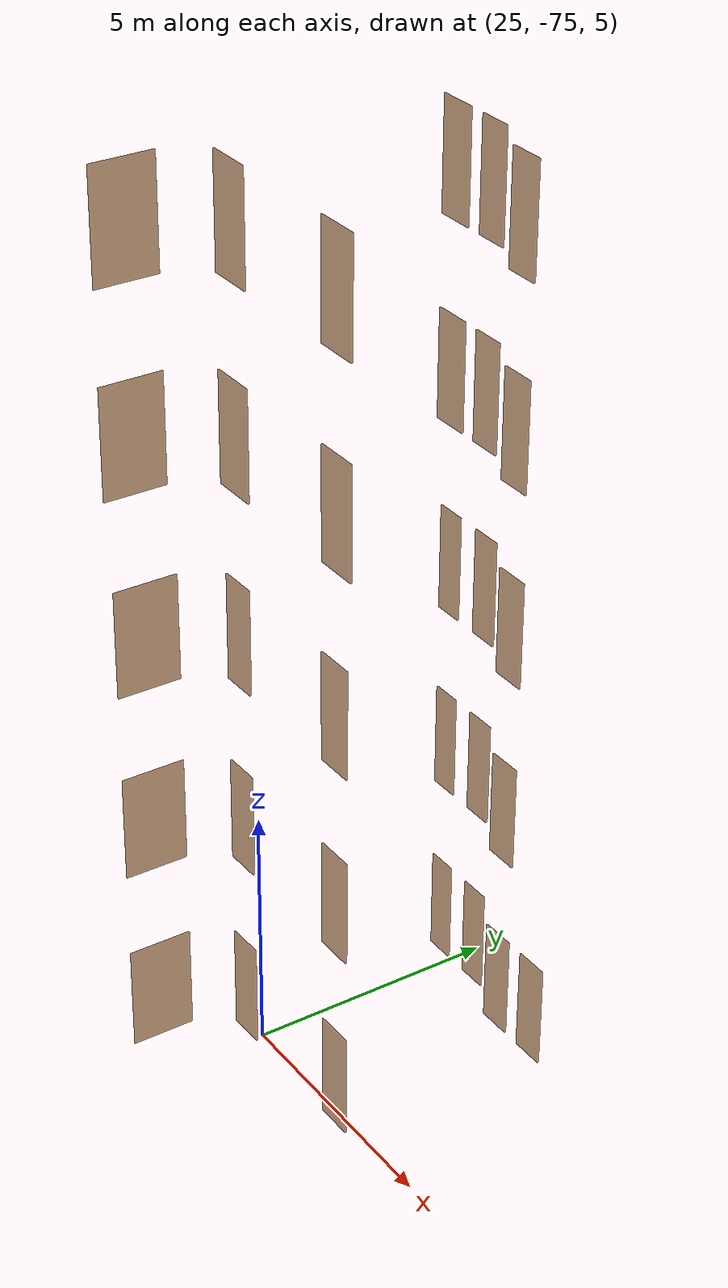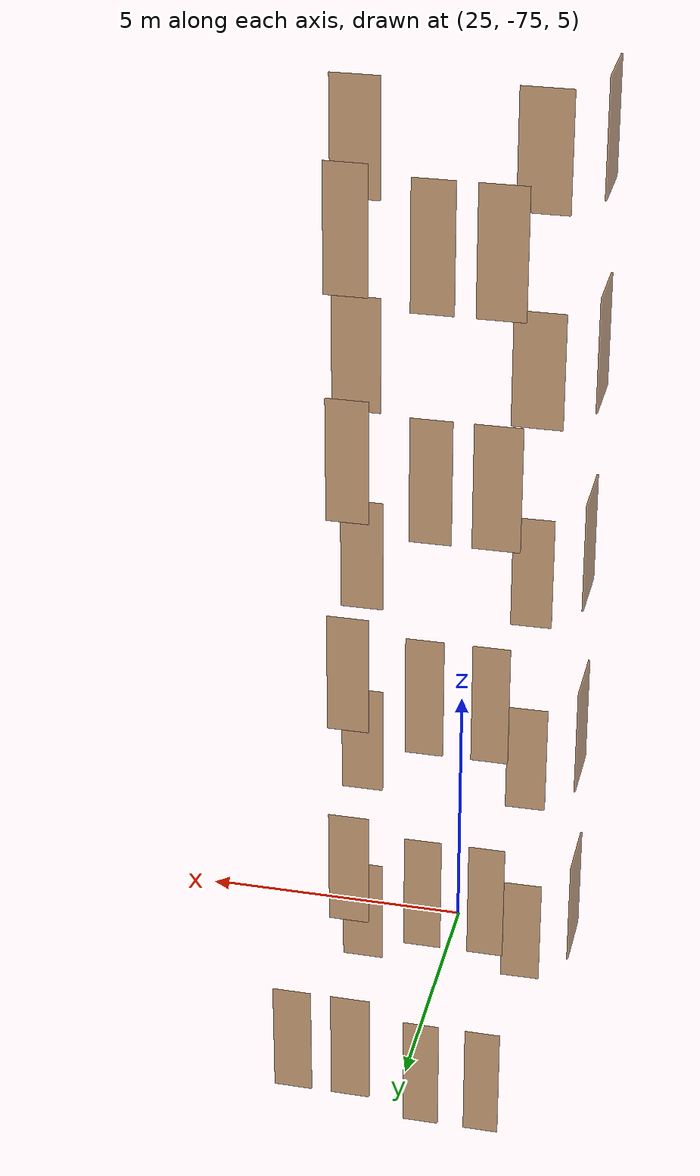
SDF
<sdf version="1.7">
 <world name="sim_world">
  <model name="0null51">
   <pose>23.572079304036127 -69.87992383228163 4.0 0 0 0.0</pose>
   <link name="right">
    <pose>0 0 1.11 0 0 0</pose>
    <visual name="right_visual">
     <geometry><box><size>0.6295848112608746 0.03 2.2</size></box></geometry>
     <material>
      <ambient>0.5 0.25 0 0.6</ambient>
      <diffuse>0.5 0.25 0 0.6</diffuse>
      <pbr><metal><metalness>0.0</metalness></metal></pbr>
     </material>
    </visual>
    <collision name="right_collision">
     <geometry><box><size>0.6295848112608746 0.03 2.2</size></box></geometry>
     <surface><contact><collide_bitmask>0x02</collide_bitmask></contact></surface>
    </collision>
    <inertial>
     <mass>50.0</mass>
     <inertia><ixx>20.17041666666667</ixx><iyy>21.8182376440433</iyy><izz>1.65532097737663</izz></inertia>
    </inertial>
   </link>
   <joint name="right_joint" type="revolute">
    <parent>world</parent>
    <child>right</child>
    <axis><xyz>0 0 -1</xyz><limit><lower>0</lower><upper>1.57</upper></limit></axis>
    <pose>0.3197924056304373 0 0 0 0 0</pose>
   </joint>
   <plugin name="register_component" filename="libregister_component.so">
    <component name="Door">
     <v_max_door>0.5</v_max_door>
     <a_max_door>0.3</a_max_door>
     <a_nom_door>0.15</a_nom_door>
     <dx_min_door>0.01</dx_min_door>
     <f_max_door>500.0</f_max_door>
     <ros_interface>true</ros_interface>
     <door name="0null51" type="SwingDoor" left_joint_name="empty_joint" right_joint_name="right_joint"/>
    </component>
   </plugin>
  </model>
  <model name="0null52">
   <pose>24.693816973453295 -69.87992383228163 4.0 0 0 3.141592653589793</pose>
   <link name="right">
    <pose>0 0 1.11 0 0 0</pose>
    <visual name="right_visual">
     <geometry><box><size>0.6492614718291401 0.03 2.2</size></box></geometry>
     <material>
      <ambient>0.5 0.25 0 0.6</ambient>
      <diffuse>0.5 0.25 0 0.6</diffuse>
      <pbr><metal><metalness>0.0</metalness></metal></pbr>
     </material>
    </visual>
    <collision name="right_collision">
     <geometry><box><size>0.6492614718291401 0.03 2.2</size></box></geometry>
     <surface><contact><collide_bitmask>0x02</collide_bitmask></contact></surface>
    </collision>
    <inertial>
     <mass>50.0</mass>
     <inertia><ixx>20.17041666666667</ixx><iyy>21.923085245007258</iyy><izz>1.7601685783405887</izz></inertia>
    </inertial>
   </link>
   <joint name="right_joint" type="revolute">
    <parent>world</parent>
    <child>right</child>
    <axis><xyz>0 0 1</xyz><limit><lower>0</lower><upper>1.57</upper></limit></axis>
    <pose>0.32963073591457004 0 0 0 0 0</pose>
   </joint>
   <plugin name="register_component" filename="libregister_component.so">
    <component name="Door">
     <v_max_door>0.5</v_max_door>
     <a_max_door>0.3</a_max_door>
     <a_nom_door>0.15</a_nom_door>
     <dx_min_door>0.01</dx_min_door>
     <f_max_door>500.0</f_max_door>
     <ros_interface>true</ros_interface>
     <door name="0null52" type="SwingDoor" left_joint_name="empty_joint" right_joint_name="right_joint"/>
    </component>
   </plugin>
  </model>
  <model name="0null53">
   <pose>26.114606280103033 -70.32860396520176 4.0 0 0 0.0</pose>
   <link name="right">
    <pose>0 0 1.11 0 0 0</pose>
    <visual name="right_visual">
     <geometry><box><size>0.7228155919799855 0.03 2.2</size></box></geometry>
     <material>
      <ambient>0.5 0.25 0 0.6</ambient>
      <diffuse>0.5 0.25 0 0.6</diffuse>
      <pbr><metal><metalness>0.0</metalness></metal></pbr>
     </material>
    </visual>
    <collision name="right_collision">
     <geometry><box><size>0.7228155919799855 0.03 2.2</size></box></geometry>
     <surface><contact><collide_bitmask>0x02</collide_bitmask></contact></surface>
    </collision>
    <inertial>
     <mass>50.0</mass>
     <inertia><ixx>20.17041666666667</ixx><iyy>22.343593250039074</iyy><izz>2.1806765833724038</izz></inertia>
    </inertial>
   </link>
   <joint name="right_joint" type="revolute">
    <parent>world</parent>
    <child>right</child>
    <axis><xyz>0 0 -1</xyz><limit><lower>0</lower><upper>1.57</upper></limit></axis>
    <pose>0.36640779598999274 0 0 0 0 0</pose>
   </joint>
   <plugin name="register_component" filename="libregister_component.so">
    <component name="Door">
     <v_max_door>0.5</v_max_door>
     <a_max_door>0.3</a_max_door>
     <a_nom_door>0.15</a_nom_door>
     <dx_min_door>0.01</dx_min_door>
     <f_max_door>500.0</f_max_door>
     <ros_interface>true</ros_interface>
     <door name="0null53" type="SwingDoor" left_joint_name="empty_joint" right_joint_name="right_joint"/>
    </component>
   </plugin>
  </model>
  <model name="0null54">
   <pose>27.208938505768565 -70.32860396520176 4.0 0 0 3.141592653589793</pose>
   <link name="right">
    <pose>0 0 1.11 0 0 0</pose>
    <visual name="right_visual">
     <geometry><box><size>0.708067430832992 0.03 2.2</size></box></geometry>
     <material>
      <ambient>0.5 0.25 0 0.6</ambient>
      <diffuse>0.5 0.25 0 0.6</diffuse>
      <pbr><metal><metalness>0.0</metalness></metal></pbr>
     </material>
    </visual>
    <collision name="right_collision">
     <geometry><box><size>0.708067430832992 0.03 2.2</size></box></geometry>
     <surface><contact><collide_bitmask>0x02</collide_bitmask></contact></surface>
    </collision>
    <inertial>
     <mass>50.0</mass>
     <inertia><ixx>20.17041666666667</ixx><iyy>22.255664527526815</iyy><izz>2.092747860860141</izz></inertia>
    </inertial>
   </link>
   <joint name="right_joint" type="revolute">
    <parent>world</parent>
    <child>right</child>
    <axis><xyz>0 0 1</xyz><limit><lower>0</lower><upper>1.57</upper></limit></axis>
    <pose>0.359033715416496 0 0 0 0 0</pose>
   </joint>
   <plugin name="register_component" filename="libregister_component.so">
    <component name="Door">
     <v_max_door>0.5</v_max_door>
     <a_max_door>0.3</a_max_door>
     <a_nom_door>0.15</a_nom_door>
     <dx_min_door>0.01</dx_min_door>
     <f_max_door>500.0</f_max_door>
     <ros_interface>true</ros_interface>
     <door name="0null54" type="SwingDoor" left_joint_name="empty_joint" right_joint_name="right_joint"/>
    </component>
   </plugin>
  </model>
  <model name="0null55">
   <pose>23.66503005637903 -74.55944068998987 4.0 0 0 -3.1305344986137533</pose>
   <link name="right">
    <pose>0 0 1.11 0 0 0</pose>
    <visual name="right_visual">
     <geometry><box><size>0.7564658594399267 0.03 2.2</size></box></geometry>
     <material>
      <ambient>0.5 0.25 0 0.6</ambient>
      <diffuse>0.5 0.25 0 0.6</diffuse>
      <pbr><metal><metalness>0.0</metalness></metal></pbr>
     </material>
    </visual>
    <collision name="right_collision">
     <geometry><box><size>0.7564658594399267 0.03 2.2</size></box></geometry>
     <surface><contact><collide_bitmask>0x02</collide_bitmask></contact></surface>
    </collision>
    <inertial>
     <mass>50.0</mass>
     <inertia><ixx>20.17041666666667</ixx><iyy>22.551002485409114</iyy><izz>2.3880858187424456</izz></inertia>
    </inertial>
   </link>
   <joint name="right_joint" type="revolute">
    <parent>world</parent>
    <child>right</child>
    <axis><xyz>0 0 1</xyz><limit><lower>0</lower><upper>1.57</upper></limit></axis>
    <pose>0.38323292971996337 0 0 0 0 0</pose>
   </joint>
   <plugin name="register_component" filename="libregister_component.so">
    <component name="Door">
     <v_max_door>0.5</v_max_door>
     <a_max_door>0.3</a_max_door>
     <a_nom_door>0.15</a_nom_door>
     <dx_min_door>0.01</dx_min_door>
     <f_max_door>500.0</f_max_door>
     <ros_interface>true</ros_interface>
     <door name="0null55" type="SwingDoor" left_joint_name="empty_joint" right_joint_name="right_joint"/>
    </component>
   </plugin>
  </model>
  <model name="0null56">
   <pose>26.843818840309133 -74.56367845274983 4.0 0 0 0.0</pose>
   <link name="right">
    <pose>0 0 1.11 0 0 0</pose>
    <visual name="right_visual">
     <geometry><box><size>0.7968550946495883 0.03 2.2</size></box></geometry>
     <material>
      <ambient>0.5 0.25 0 0.6</ambient>
      <diffuse>0.5 0.25 0 0.6</diffuse>
      <pbr><metal><metalness>0.0</metalness></metal></pbr>
     </material>
    </visual>
    <collision name="right_collision">
     <geometry><box><size>0.7968550946495883 0.03 2.2</size></box></geometry>
     <surface><contact><collide_bitmask>0x02</collide_bitmask></contact></surface>
    </collision>
    <inertial>
     <mass>50.0</mass>
     <inertia><ixx>20.17041666666667</ixx><iyy>22.812408507787524</iyy><izz>2.6494918411208515</izz></inertia>
    </inertial>
   </link>
   <joint name="right_joint" type="revolute">
    <parent>world</parent>
    <child>right</child>
    <axis><xyz>0 0 -1</xyz><limit><lower>0</lower><upper>1.57</upper></limit></axis>
    <pose>0.40342754732479413 0 0 0 0 0</pose>
   </joint>
   <plugin name="register_component" filename="libregister_component.so">
    <component name="Door">
     <v_max_door>0.5</v_max_door>
     <a_max_door>0.3</a_max_door>
     <a_nom_door>0.15</a_nom_door>
     <dx_min_door>0.01</dx_min_door>
     <f_max_door>500.0</f_max_door>
     <ros_interface>true</ros_interface>
     <door name="0null56" type="SwingDoor" left_joint_name="empty_joint" right_joint_name="right_joint"/>
    </component>
   </plugin>
  </model>
  <model name="0null57">
   <pose>22.824216853974523 -75.96718067430828 4.0 0 0 -1.5707963267948966</pose>
   <link name="right">
    <pose>0 0 1.11 0 0 0</pose>
    <visual name="right_visual">
     <geometry><box><size>1.2964257178060643 0.03 2.2</size></box></geometry>
     <material>
      <ambient>0.5 0.25 0 0.6</ambient>
      <diffuse>0.5 0.25 0 0.6</diffuse>
      <pbr><metal><metalness>0.0</metalness></metal></pbr>
     </material>
    </visual>
    <collision name="right_collision">
     <geometry><box><size>1.2964257178060643 0.03 2.2</size></box></geometry>
     <surface><contact><collide_bitmask>0x02</collide_bitmask></contact></surface>
    </collision>
    <inertial>
     <mass>50.0</mass>
     <inertia><ixx>20.17041666666667</ixx><iyy>27.16966517412071</iyy><izz>7.006748507454038</izz></inertia>
    </inertial>
   </link>
   <joint name="right_joint" type="revolute">
    <parent>world</parent>
    <child>right</child>
    <axis><xyz>0 0 -1</xyz><limit><lower>0</lower><upper>1.57</upper></limit></axis>
    <pose>0.6532128589030322 0 0 0 0 0</pose>
   </joint>
   <plugin name="register_component" filename="libregister_component.so">
    <component name="Door">
     <v_max_door>0.5</v_max_door>
     <a_max_door>0.3</a_max_door>
     <a_nom_door>0.15</a_nom_door>
     <dx_min_door>0.01</dx_min_door>
     <f_max_door>500.0</f_max_door>
     <ros_interface>true</ros_interface>
     <door name="0null57" type="SwingDoor" left_joint_name="empty_joint" right_joint_name="right_joint"/>
    </component>
   </plugin>
  </model>
  <model name="1null51">
   <pose>23.572079304036127 -69.87992383228163 8.0 0 0 0.0</pose>
   <link name="right">
    <pose>0 0 1.11 0 0 0</pose>
    <visual name="right_visual">
     <geometry><box><size>0.6295848112608746 0.03 2.2</size></box></geometry>
     <material>
      <ambient>0.5 0.25 0 0.6</ambient>
      <diffuse>0.5 0.25 0 0.6</diffuse>
      <pbr><metal><metalness>0.0</metalness></metal></pbr>
     </material>
    </visual>
    <collision name="right_collision">
     <geometry><box><size>0.6295848112608746 0.03 2.2</size></box></geometry>
     <surface><contact><collide_bitmask>0x02</collide_bitmask></contact></surface>
    </collision>
    <inertial>
     <mass>50.0</mass>
     <inertia><ixx>20.17041666666667</ixx><iyy>21.8182376440433</iyy><izz>1.65532097737663</izz></inertia>
    </inertial>
   </link>
   <joint name="right_joint" type="revolute">
    <parent>world</parent>
    <child>right</child>
    <axis><xyz>0 0 -1</xyz><limit><lower>0</lower><upper>1.57</upper></limit></axis>
    <pose>0.3197924056304373 0 0 0 0 0</pose>
   </joint>
   <plugin name="register_component" filename="libregister_component.so">
    <component name="Door">
     <v_max_door>0.5</v_max_door>
     <a_max_door>0.3</a_max_door>
     <a_nom_door>0.15</a_nom_door>
     <dx_min_door>0.01</dx_min_door>
     <f_max_door>500.0</f_max_door>
     <ros_interface>true</ros_interface>
     <door name="1null51" type="SwingDoor" left_joint_name="empty_joint" right_joint_name="right_joint"/>
    </component>
   </plugin>
  </model>
  <model name="1null52">
   <pose>24.693816973453295 -69.87992383228163 8.0 0 0 3.141592653589793</pose>
   <link name="right">
    <pose>0 0 1.11 0 0 0</pose>
    <visual name="right_visual">
     <geometry><box><size>0.6492614718291401 0.03 2.2</size></box></geometry>
     <material>
      <ambient>0.5 0.25 0 0.6</ambient>
      <diffuse>0.5 0.25 0 0.6</diffuse>
      <pbr><metal><metalness>0.0</metalness></metal></pbr>
     </material>
    </visual>
    <collision name="right_collision">
     <geometry><box><size>0.6492614718291401 0.03 2.2</size></box></geometry>
     <surface><contact><collide_bitmask>0x02</collide_bitmask></contact></surface>
    </collision>
    <inertial>
     <mass>50.0</mass>
     <inertia><ixx>20.17041666666667</ixx><iyy>21.923085245007258</iyy><izz>1.7601685783405887</izz></inertia>
    </inertial>
   </link>
   <joint name="right_joint" type="revolute">
    <parent>world</parent>
    <child>right</child>
    <axis><xyz>0 0 1</xyz><limit><lower>0</lower><upper>1.57</upper></limit></axis>
    <pose>0.32963073591457004 0 0 0 0 0</pose>
   </joint>
   <plugin name="register_component" filename="libregister_component.so">
    <component name="Door">
     <v_max_door>0.5</v_max_door>
     <a_max_door>0.3</a_max_door>
     <a_nom_door>0.15</a_nom_door>
     <dx_min_door>0.01</dx_min_door>
     <f_max_door>500.0</f_max_door>
     <ros_interface>true</ros_interface>
     <door name="1null52" type="SwingDoor" left_joint_name="empty_joint" right_joint_name="right_joint"/>
    </component>
   </plugin>
  </model>
  <model name="1null53">
   <pose>26.114606280103033 -70.32860396520176 8.0 0 0 0.0</pose>
   <link name="right">
    <pose>0 0 1.11 0 0 0</pose>
    <visual name="right_visual">
     <geometry><box><size>0.7228155919799855 0.03 2.2</size></box></geometry>
     <material>
      <ambient>0.5 0.25 0 0.6</ambient>
      <diffuse>0.5 0.25 0 0.6</diffuse>
      <pbr><metal><metalness>0.0</metalness></metal></pbr>
     </material>
    </visual>
    <collision name="right_collision">
     <geometry><box><size>0.7228155919799855 0.03 2.2</size></box></geometry>
     <surface><contact><collide_bitmask>0x02</collide_bitmask></contact></surface>
    </collision>
    <inertial>
     <mass>50.0</mass>
     <inertia><ixx>20.17041666666667</ixx><iyy>22.343593250039074</iyy><izz>2.1806765833724038</izz></inertia>
    </inertial>
   </link>
   <joint name="right_joint" type="revolute">
    <parent>world</parent>
    <child>right</child>
    <axis><xyz>0 0 -1</xyz><limit><lower>0</lower><upper>1.57</upper></limit></axis>
    <pose>0.36640779598999274 0 0 0 0 0</pose>
   </joint>
   <plugin name="register_component" filename="libregister_component.so">
    <component name="Door">
     <v_max_door>0.5</v_max_door>
     <a_max_door>0.3</a_max_door>
     <a_nom_door>0.15</a_nom_door>
     <dx_min_door>0.01</dx_min_door>
     <f_max_door>500.0</f_max_door>
     <ros_interface>true</ros_interface>
     <door name="1null53" type="SwingDoor" left_joint_name="empty_joint" right_joint_name="right_joint"/>
    </component>
   </plugin>
  </model>
  <model name="1null55">
   <pose>23.66503005637903 -74.55944068998987 8.0 0 0 -3.1305344986137533</pose>
   <link name="right">
    <pose>0 0 1.11 0 0 0</pose>
    <visual name="right_visual">
     <geometry><box><size>0.7564658594399267 0.03 2.2</size></box></geometry>
     <material>
      <ambient>0.5 0.25 0 0.6</ambient>
      <diffuse>0.5 0.25 0 0.6</diffuse>
      <pbr><metal><metalness>0.0</metalness></metal></pbr>
     </material>
    </visual>
    <collision name="right_collision">
     <geometry><box><size>0.7564658594399267 0.03 2.2</size></box></geometry>
     <surface><contact><collide_bitmask>0x02</collide_bitmask></contact></surface>
    </collision>
    <inertial>
     <mass>50.0</mass>
     <inertia><ixx>20.17041666666667</ixx><iyy>22.551002485409114</iyy><izz>2.3880858187424456</izz></inertia>
    </inertial>
   </link>
   <joint name="right_joint" type="revolute">
    <parent>world</parent>
    <child>right</child>
    <axis><xyz>0 0 1</xyz><limit><lower>0</lower><upper>1.57</upper></limit></axis>
    <pose>0.38323292971996337 0 0 0 0 0</pose>
   </joint>
   <plugin name="register_component" filename="libregister_component.so">
    <component name="Door">
     <v_max_door>0.5</v_max_door>
     <a_max_door>0.3</a_max_door>
     <a_nom_door>0.15</a_nom_door>
     <dx_min_door>0.01</dx_min_door>
     <f_max_door>500.0</f_max_door>
     <ros_interface>true</ros_interface>
     <door name="1null55" type="SwingDoor" left_joint_name="empty_joint" right_joint_name="right_joint"/>
    </component>
   </plugin>
  </model>
  <model name="1null56">
   <pose>26.843818840309133 -74.56367845274983 8.0 0 0 0.0</pose>
   <link name="right">
    <pose>0 0 1.11 0 0 0</pose>
    <visual name="right_visual">
     <geometry><box><size>0.7968550946495883 0.03 2.2</size></box></geometry>
     <material>
      <ambient>0.5 0.25 0 0.6</ambient>
      <diffuse>0.5 0.25 0 0.6</diffuse>
      <pbr><metal><metalness>0.0</metalness></metal></pbr>
     </material>
    </visual>
    <collision name="right_collision">
     <geometry><box><size>0.7968550946495883 0.03 2.2</size></box></geometry>
     <surface><contact><collide_bitmask>0x02</collide_bitmask></contact></surface>
    </collision>
    <inertial>
     <mass>50.0</mass>
     <inertia><ixx>20.17041666666667</ixx><iyy>22.812408507787524</iyy><izz>2.6494918411208515</izz></inertia>
    </inertial>
   </link>
   <joint name="right_joint" type="revolute">
    <parent>world</parent>
    <child>right</child>
    <axis><xyz>0 0 -1</xyz><limit><lower>0</lower><upper>1.57</upper></limit></axis>
    <pose>0.40342754732479413 0 0 0 0 0</pose>
   </joint>
   <plugin name="register_component" filename="libregister_component.so">
    <component name="Door">
     <v_max_door>0.5</v_max_door>
     <a_max_door>0.3</a_max_door>
     <a_nom_door>0.15</a_nom_door>
     <dx_min_door>0.01</dx_min_door>
     <f_max_door>500.0</f_max_door>
     <ros_interface>true</ros_interface>
     <door name="1null56" type="SwingDoor" left_joint_name="empty_joint" right_joint_name="right_joint"/>
    </component>
   </plugin>
  </model>
  <model name="1null57">
   <pose>22.824216853974523 -75.96718067430828 8.0 0 0 -1.5707963267948966</pose>
   <link name="right">
    <pose>0 0 1.11 0 0 0</pose>
    <visual name="right_visual">
     <geometry><box><size>1.2964257178060643 0.03 2.2</size></box></geometry>
     <material>
      <ambient>0.5 0.25 0 0.6</ambient>
      <diffuse>0.5 0.25 0 0.6</diffuse>
      <pbr><metal><metalness>0.0</metalness></metal></pbr>
     </material>
    </visual>
    <collision name="right_collision">
     <geometry><box><size>1.2964257178060643 0.03 2.2</size></box></geometry>
     <surface><contact><collide_bitmask>0x02</collide_bitmask></contact></surface>
    </collision>
    <inertial>
     <mass>50.0</mass>
     <inertia><ixx>20.17041666666667</ixx><iyy>27.16966517412071</iyy><izz>7.006748507454038</izz></inertia>
    </inertial>
   </link>
   <joint name="right_joint" type="revolute">
    <parent>world</parent>
    <child>right</child>
    <axis><xyz>0 0 -1</xyz><limit><lower>0</lower><upper>1.57</upper></limit></axis>
    <pose>0.6532128589030322 0 0 0 0 0</pose>
   </joint>
   <plugin name="register_component" filename="libregister_component.so">
    <component name="Door">
     <v_max_door>0.5</v_max_door>
     <a_max_door>0.3</a_max_door>
     <a_nom_door>0.15</a_nom_door>
     <dx_min_door>0.01</dx_min_door>
     <f_max_door>500.0</f_max_door>
     <ros_interface>true</ros_interface>
     <door name="1null57" type="SwingDoor" left_joint_name="empty_joint" right_joint_name="right_joint"/>
    </component>
   </plugin>
  </model>
  <model name="2null51">
   <pose>23.572079304036127 -69.87992383228163 12.0 0 0 0.0</pose>
   <link name="right">
    <pose>0 0 1.11 0 0 0</pose>
    <visual name="right_visual">
     <geometry><box><size>0.6295848112608746 0.03 2.2</size></box></geometry>
     <material>
      <ambient>0.5 0.25 0 0.6</ambient>
      <diffuse>0.5 0.25 0 0.6</diffuse>
      <pbr><metal><metalness>0.0</metalness></metal></pbr>
     </material>
    </visual>
    <collision name="right_collision">
     <geometry><box><size>0.6295848112608746 0.03 2.2</size></box></geometry>
     <surface><contact><collide_bitmask>0x02</collide_bitmask></contact></surface>
    </collision>
    <inertial>
     <mass>50.0</mass>
     <inertia><ixx>20.17041666666667</ixx><iyy>21.8182376440433</iyy><izz>1.65532097737663</izz></inertia>
    </inertial>
   </link>
   <joint name="right_joint" type="revolute">
    <parent>world</parent>
    <child>right</child>
    <axis><xyz>0 0 -1</xyz><limit><lower>0</lower><upper>1.57</upper></limit></axis>
    <pose>0.3197924056304373 0 0 0 0 0</pose>
   </joint>
   <plugin name="register_component" filename="libregister_component.so">
    <component name="Door">
     <v_max_door>0.5</v_max_door>
     <a_max_door>0.3</a_max_door>
     <a_nom_door>0.15</a_nom_door>
     <dx_min_door>0.01</dx_min_door>
     <f_max_door>500.0</f_max_door>
     <ros_interface>true</ros_interface>
     <door name="2null51" type="SwingDoor" left_joint_name="empty_joint" right_joint_name="right_joint"/>
    </component>
   </plugin>
  </model>
  <model name="2null52">
   <pose>24.693816973453295 -69.87992383228163 12.0 0 0 3.141592653589793</pose>
   <link name="right">
    <pose>0 0 1.11 0 0 0</pose>
    <visual name="right_visual">
     <geometry><box><size>0.6492614718291401 0.03 2.2</size></box></geometry>
     <material>
      <ambient>0.5 0.25 0 0.6</ambient>
      <diffuse>0.5 0.25 0 0.6</diffuse>
      <pbr><metal><metalness>0.0</metalness></metal></pbr>
     </material>
    </visual>
    <collision name="right_collision">
     <geometry><box><size>0.6492614718291401 0.03 2.2</size></box></geometry>
     <surface><contact><collide_bitmask>0x02</collide_bitmask></contact></surface>
    </collision>
    <inertial>
     <mass>50.0</mass>
     <inertia><ixx>20.17041666666667</ixx><iyy>21.923085245007258</iyy><izz>1.7601685783405887</izz></inertia>
    </inertial>
   </link>
   <joint name="right_joint" type="revolute">
    <parent>world</parent>
    <child>right</child>
    <axis><xyz>0 0 1</xyz><limit><lower>0</lower><upper>1.57</upper></limit></axis>
    <pose>0.32963073591457004 0 0 0 0 0</pose>
   </joint>
   <plugin name="register_component" filename="libregister_component.so">
    <component name="Door">
     <v_max_door>0.5</v_max_door>
     <a_max_door>0.3</a_max_door>
     <a_nom_door>0.15</a_nom_door>
     <dx_min_door>0.01</dx_min_door>
     <f_max_door>500.0</f_max_door>
     <ros_interface>true</ros_interface>
     <door name="2null52" type="SwingDoor" left_joint_name="empty_joint" right_joint_name="right_joint"/>
    </component>
   </plugin>
  </model>
  <model name="2null53">
   <pose>26.114606280103033 -70.32860396520176 12.0 0 0 0.0</pose>
   <link name="right">
    <pose>0 0 1.11 0 0 0</pose>
    <visual name="right_visual">
     <geometry><box><size>0.7228155919799855 0.03 2.2</size></box></geometry>
     <material>
      <ambient>0.5 0.25 0 0.6</ambient>
      <diffuse>0.5 0.25 0 0.6</diffuse>
      <pbr><metal><metalness>0.0</metalness></metal></pbr>
     </material>
    </visual>
    <collision name="right_collision">
     <geometry><box><size>0.7228155919799855 0.03 2.2</size></box></geometry>
     <surface><contact><collide_bitmask>0x02</collide_bitmask></contact></surface>
    </collision>
    <inertial>
     <mass>50.0</mass>
     <inertia><ixx>20.17041666666667</ixx><iyy>22.343593250039074</iyy><izz>2.1806765833724038</izz></inertia>
    </inertial>
   </link>
   <joint name="right_joint" type="revolute">
    <parent>world</parent>
    <child>right</child>
    <axis><xyz>0 0 -1</xyz><limit><lower>0</lower><upper>1.57</upper></limit></axis>
    <pose>0.36640779598999274 0 0 0 0 0</pose>
   </joint>
   <plugin name="register_component" filename="libregister_component.so">
    <component name="Door">
     <v_max_door>0.5</v_max_door>
     <a_max_door>0.3</a_max_door>
     <a_nom_door>0.15</a_nom_door>
     <dx_min_door>0.01</dx_min_door>
     <f_max_door>500.0</f_max_door>
     <ros_interface>true</ros_interface>
     <door name="2null53" type="SwingDoor" left_joint_name="empty_joint" right_joint_name="right_joint"/>
    </component>
   </plugin>
  </model>
  <model name="2null55">
   <pose>23.66503005637903 -74.55944068998987 12.0 0 0 -3.1305344986137533</pose>
   <link name="right">
    <pose>0 0 1.11 0 0 0</pose>
    <visual name="right_visual">
     <geometry><box><size>0.7564658594399267 0.03 2.2</size></box></geometry>
     <material>
      <ambient>0.5 0.25 0 0.6</ambient>
      <diffuse>0.5 0.25 0 0.6</diffuse>
      <pbr><metal><metalness>0.0</metalness></metal></pbr>
     </material>
    </visual>
    <collision name="right_collision">
     <geometry><box><size>0.7564658594399267 0.03 2.2</size></box></geometry>
     <surface><contact><collide_bitmask>0x02</collide_bitmask></contact></surface>
    </collision>
    <inertial>
     <mass>50.0</mass>
     <inertia><ixx>20.17041666666667</ixx><iyy>22.551002485409114</iyy><izz>2.3880858187424456</izz></inertia>
    </inertial>
   </link>
   <joint name="right_joint" type="revolute">
    <parent>world</parent>
    <child>right</child>
    <axis><xyz>0 0 1</xyz><limit><lower>0</lower><upper>1.57</upper></limit></axis>
    <pose>0.38323292971996337 0 0 0 0 0</pose>
   </joint>
   <plugin name="register_component" filename="libregister_component.so">
    <component name="Door">
     <v_max_door>0.5</v_max_door>
     <a_max_door>0.3</a_max_door>
     <a_nom_door>0.15</a_nom_door>
     <dx_min_door>0.01</dx_min_door>
     <f_max_door>500.0</f_max_door>
     <ros_interface>true</ros_interface>
     <door name="2null55" type="SwingDoor" left_joint_name="empty_joint" right_joint_name="right_joint"/>
    </component>
   </plugin>
  </model>
  <model name="2null56">
   <pose>26.843818840309133 -74.56367845274983 12.0 0 0 0.0</pose>
   <link name="right">
    <pose>0 0 1.11 0 0 0</pose>
    <visual name="right_visual">
     <geometry><box><size>0.7968550946495883 0.03 2.2</size></box></geometry>
     <material>
      <ambient>0.5 0.25 0 0.6</ambient>
      <diffuse>0.5 0.25 0 0.6</diffuse>
      <pbr><metal><metalness>0.0</metalness></metal></pbr>
     </material>
    </visual>
    <collision name="right_collision">
     <geometry><box><size>0.7968550946495883 0.03 2.2</size></box></geometry>
     <surface><contact><collide_bitmask>0x02</collide_bitmask></contact></surface>
    </collision>
    <inertial>
     <mass>50.0</mass>
     <inertia><ixx>20.17041666666667</ixx><iyy>22.812408507787524</iyy><izz>2.6494918411208515</izz></inertia>
    </inertial>
   </link>
   <joint name="right_joint" type="revolute">
    <parent>world</parent>
    <child>right</child>
    <axis><xyz>0 0 -1</xyz><limit><lower>0</lower><upper>1.57</upper></limit></axis>
    <pose>0.40342754732479413 0 0 0 0 0</pose>
   </joint>
   <plugin name="register_component" filename="libregister_component.so">
    <component name="Door">
     <v_max_door>0.5</v_max_door>
     <a_max_door>0.3</a_max_door>
     <a_nom_door>0.15</a_nom_door>
     <dx_min_door>0.01</dx_min_door>
     <f_max_door>500.0</f_max_door>
     <ros_interface>true</ros_interface>
     <door name="2null56" type="SwingDoor" left_joint_name="empty_joint" right_joint_name="right_joint"/>
    </component>
   </plugin>
  </model>
  <model name="2null57">
   <pose>22.824216853974523 -75.96718067430828 12.0 0 0 -1.5707963267948966</pose>
   <link name="right">
    <pose>0 0 1.11 0 0 0</pose>
    <visual name="right_visual">
     <geometry><box><size>1.2964257178060643 0.03 2.2</size></box></geometry>
     <material>
      <ambient>0.5 0.25 0 0.6</ambient>
      <diffuse>0.5 0.25 0 0.6</diffuse>
      <pbr><metal><metalness>0.0</metalness></metal></pbr>
     </material>
    </visual>
    <collision name="right_collision">
     <geometry><box><size>1.2964257178060643 0.03 2.2</size></box></geometry>
     <surface><contact><collide_bitmask>0x02</collide_bitmask></contact></surface>
    </collision>
    <inertial>
     <mass>50.0</mass>
     <inertia><ixx>20.17041666666667</ixx><iyy>27.16966517412071</iyy><izz>7.006748507454038</izz></inertia>
    </inertial>
   </link>
   <joint name="right_joint" type="revolute">
    <parent>world</parent>
    <child>right</child>
    <axis><xyz>0 0 -1</xyz><limit><lower>0</lower><upper>1.57</upper></limit></axis>
    <pose>0.6532128589030322 0 0 0 0 0</pose>
   </joint>
   <plugin name="register_component" filename="libregister_component.so">
    <component name="Door">
     <v_max_door>0.5</v_max_door>
     <a_max_door>0.3</a_max_door>
     <a_nom_door>0.15</a_nom_door>
     <dx_min_door>0.01</dx_min_door>
     <f_max_door>500.0</f_max_door>
     <ros_interface>true</ros_interface>
     <door name="2null57" type="SwingDoor" left_joint_name="empty_joint" right_joint_name="right_joint"/>
    </component>
   </plugin>
  </model>
  <model name="wnullm14">
   <pose>22.741537066838724 -76.04028926860502 16.0 0 0 -1.5708382762778215</pose>
   <link name="right">
    <pose>0 0 1.11 0 0 0</pose>
    <visual name="right_visual">
     <geometry><box><size>1.2595910010695999 0.03 2.2</size></box></geometry>
     <material>
      <ambient>0.5 0.25 0 0.6</ambient>
      <diffuse>0.5 0.25 0 0.6</diffuse>
      <pbr><metal><metalness>0.0</metalness></metal></pbr>
     </material>
    </visual>
    <collision name="right_collision">
     <geometry><box><size>1.2595910010695999 0.03 2.2</size></box></geometry>
     <surface><contact><collide_bitmask>0x02</collide_bitmask></contact></surface>
    </collision>
    <inertial>
     <mass>50.0</mass>
     <inertia><ixx>20.17041666666667</ixx><iyy>26.777372874897992</iyy><izz>6.61445620823132</izz></inertia>
    </inertial>
   </link>
   <joint name="right_joint" type="revolute">
    <parent>world</parent>
    <child>right</child>
    <axis><xyz>0 0 -1</xyz><limit><lower>0</lower><upper>1.57</upper></limit></axis>
    <pose>0.6347955005347999 0 0 0 0 0</pose>
   </joint>
   <plugin name="register_component" filename="libregister_component.so">
    <component name="Door">
     <v_max_door>0.5</v_max_door>
     <a_max_door>0.3</a_max_door>
     <a_nom_door>0.15</a_nom_door>
     <dx_min_door>0.01</dx_min_door>
     <f_max_door>500.0</f_max_door>
     <ros_interface>true</ros_interface>
     <door name="wnullm14" type="SwingDoor" left_joint_name="empty_joint" right_joint_name="right_joint"/>
    </component>
   </plugin>
  </model>
  <model name="wnullm16">
   <pose>23.67515858080889 -74.5840070701837 16.0 0 0 3.141550704106865</pose>
   <link name="right">
    <pose>0 0 1.11 0 0 0</pose>
    <visual name="right_visual">
     <geometry><box><size>0.931017209326454 0.03 2.2</size></box></geometry>
     <material>
      <ambient>0.5 0.25 0 0.6</ambient>
      <diffuse>0.5 0.25 0 0.6</diffuse>
      <pbr><metal><metalness>0.0</metalness></metal></pbr>
     </material>
    </visual>
    <collision name="right_collision">
     <geometry><box><size>0.931017209326454 0.03 2.2</size></box></geometry>
     <surface><contact><collide_bitmask>0x02</collide_bitmask></contact></surface>
    </collision>
    <inertial>
     <mass>50.0</mass>
     <inertia><ixx>20.17041666666667</ixx><iyy>23.778304350258416</iyy><izz>3.6153876835917433</izz></inertia>
    </inertial>
   </link>
   <joint name="right_joint" type="revolute">
    <parent>world</parent>
    <child>right</child>
    <axis><xyz>0 0 1</xyz><limit><lower>0</lower><upper>1.57</upper></limit></axis>
    <pose>0.470508604663227 0 0 0 0 0</pose>
   </joint>
   <plugin name="register_component" filename="libregister_component.so">
    <component name="Door">
     <v_max_door>0.5</v_max_door>
     <a_max_door>0.3</a_max_door>
     <a_nom_door>0.15</a_nom_door>
     <dx_min_door>0.01</dx_min_door>
     <f_max_door>500.0</f_max_door>
     <ros_interface>true</ros_interface>
     <door name="wnullm16" type="SwingDoor" left_joint_name="empty_joint" right_joint_name="right_joint"/>
    </component>
   </plugin>
  </model>
  <model name="wnullm17">
   <pose>23.55471047176424 -69.94379731953546 16.0 0 0 -4.1949482925014696e-05</pose>
   <link name="right">
    <pose>0 0 1.11 0 0 0</pose>
    <visual name="right_visual">
     <geometry><box><size>0.7917873091429413 0.03 2.2</size></box></geometry>
     <material>
      <ambient>0.5 0.25 0 0.6</ambient>
      <diffuse>0.5 0.25 0 0.6</diffuse>
      <pbr><metal><metalness>0.0</metalness></metal></pbr>
     </material>
    </visual>
    <collision name="right_collision">
     <geometry><box><size>0.7917873091429413 0.03 2.2</size></box></geometry>
     <surface><contact><collide_bitmask>0x02</collide_bitmask></contact></surface>
    </collision>
    <inertial>
     <mass>50.0</mass>
     <inertia><ixx>20.17041666666667</ixx><iyy>22.77886309549925</iyy><izz>2.615946428832582</izz></inertia>
    </inertial>
   </link>
   <joint name="right_joint" type="revolute">
    <parent>world</parent>
    <child>right</child>
    <axis><xyz>0 0 -1</xyz><limit><lower>0</lower><upper>1.57</upper></limit></axis>
    <pose>0.40089365457147064 0 0 0 0 0</pose>
   </joint>
   <plugin name="register_component" filename="libregister_component.so">
    <component name="Door">
     <v_max_door>0.5</v_max_door>
     <a_max_door>0.3</a_max_door>
     <a_nom_door>0.15</a_nom_door>
     <dx_min_door>0.01</dx_min_door>
     <f_max_door>500.0</f_max_door>
     <ros_interface>true</ros_interface>
     <door name="wnullm17" type="SwingDoor" left_joint_name="empty_joint" right_joint_name="right_joint"/>
    </component>
   </plugin>
  </model>
  <model name="wnullm18">
   <pose>24.63967290117116 -69.9438428331484 16.0 0 0 3.1415507041068658</pose>
   <link name="right">
    <pose>0 0 1.11 0 0 0</pose>
    <visual name="right_visual">
     <geometry><box><size>0.6961649886178525 0.03 2.2</size></box></geometry>
     <material>
      <ambient>0.5 0.25 0 0.6</ambient>
      <diffuse>0.5 0.25 0 0.6</diffuse>
      <pbr><metal><metalness>0.0</metalness></metal></pbr>
     </material>
    </visual>
    <collision name="right_collision">
     <geometry><box><size>0.6961649886178525 0.03 2.2</size></box></geometry>
     <surface><contact><collide_bitmask>0x02</collide_bitmask></contact></surface>
    </collision>
    <inertial>
     <mass>50.0</mass>
     <inertia><ixx>20.17041666666667</ixx><iyy>22.186023714072064</iyy><izz>2.0231070474053947</izz></inertia>
    </inertial>
   </link>
   <joint name="right_joint" type="revolute">
    <parent>world</parent>
    <child>right</child>
    <axis><xyz>0 0 1</xyz><limit><lower>0</lower><upper>1.57</upper></limit></axis>
    <pose>0.35308249430892624 0 0 0 0 0</pose>
   </joint>
   <plugin name="register_component" filename="libregister_component.so">
    <component name="Door">
     <v_max_door>0.5</v_max_door>
     <a_max_door>0.3</a_max_door>
     <a_nom_door>0.15</a_nom_door>
     <dx_min_door>0.01</dx_min_door>
     <f_max_door>500.0</f_max_door>
     <ros_interface>true</ros_interface>
     <door name="wnullm18" type="SwingDoor" left_joint_name="empty_joint" right_joint_name="right_joint"/>
    </component>
   </plugin>
  </model>
  <model name="wnullm19">
   <pose>26.114362422109007 -70.37146367273905 16.0 0 0 -4.1949482913415014e-05</pose>
   <link name="right">
    <pose>0 0 1.11 0 0 0</pose>
    <visual name="right_visual">
     <geometry><box><size>0.7241279378539736 0.03 2.2</size></box></geometry>
     <material>
      <ambient>0.5 0.25 0 0.6</ambient>
      <diffuse>0.5 0.25 0 0.6</diffuse>
      <pbr><metal><metalness>0.0</metalness></metal></pbr>
     </material>
    </visual>
    <collision name="right_collision">
     <geometry><box><size>0.7241279378539736 0.03 2.2</size></box></geometry>
     <surface><contact><collide_bitmask>0x02</collide_bitmask></contact></surface>
    </collision>
    <inertial>
     <mass>50.0</mass>
     <inertia><ixx>20.17041666666667</ixx><iyy>22.351505293252707</iyy><izz>2.1885886265860344</izz></inertia>
    </inertial>
   </link>
   <joint name="right_joint" type="revolute">
    <parent>world</parent>
    <child>right</child>
    <axis><xyz>0 0 -1</xyz><limit><lower>0</lower><upper>1.57</upper></limit></axis>
    <pose>0.3670639689269868 0 0 0 0 0</pose>
   </joint>
   <plugin name="register_component" filename="libregister_component.so">
    <component name="Door">
     <v_max_door>0.5</v_max_door>
     <a_max_door>0.3</a_max_door>
     <a_nom_door>0.15</a_nom_door>
     <dx_min_door>0.01</dx_min_door>
     <f_max_door>500.0</f_max_door>
     <ros_interface>true</ros_interface>
     <door name="wnullm19" type="SwingDoor" left_joint_name="empty_joint" right_joint_name="right_joint"/>
    </component>
   </plugin>
  </model>
  <model name="wnullm21">
   <pose>26.942510399331788 -74.58414413390312 16.0 0 0 -4.194948293168421e-05</pose>
   <link name="right">
    <pose>0 0 1.11 0 0 0</pose>
    <visual name="right_visual">
     <geometry><box><size>0.8936601712619939 0.03 2.2</size></box></geometry>
     <material>
      <ambient>0.5 0.25 0 0.6</ambient>
      <diffuse>0.5 0.25 0 0.6</diffuse>
      <pbr><metal><metalness>0.0</metalness></metal></pbr>
     </material>
    </visual>
    <collision name="right_collision">
     <geometry><box><size>0.8936601712619939 0.03 2.2</size></box></geometry>
     <surface><contact><collide_bitmask>0x02</collide_bitmask></contact></surface>
    </collision>
    <inertial>
     <mass>50.0</mass>
     <inertia><ixx>20.17041666666667</ixx><iyy>23.494285423750075</iyy><izz>3.3313687570834016</izz></inertia>
    </inertial>
   </link>
   <joint name="right_joint" type="revolute">
    <parent>world</parent>
    <child>right</child>
    <axis><xyz>0 0 -1</xyz><limit><lower>0</lower><upper>1.57</upper></limit></axis>
    <pose>0.45183008563099697 0 0 0 0 0</pose>
   </joint>
   <plugin name="register_component" filename="libregister_component.so">
    <component name="Door">
     <v_max_door>0.5</v_max_door>
     <a_max_door>0.3</a_max_door>
     <a_nom_door>0.15</a_nom_door>
     <dx_min_door>0.01</dx_min_door>
     <f_max_door>500.0</f_max_door>
     <ros_interface>true</ros_interface>
     <door name="wnullm21" type="SwingDoor" left_joint_name="empty_joint" right_joint_name="right_joint"/>
    </component>
   </plugin>
  </model>
  <model name="nullm14">
   <pose>22.7476607886032 -76.0410820198701 20.0 0 0 -1.5710266354043694</pose>
   <link name="right">
    <pose>0 0 1.11 0 0 0</pose>
    <visual name="right_visual">
     <geometry><box><size>1.259578437184301 0.03 2.2</size></box></geometry>
     <material>
      <ambient>0.5 0.25 0 0.6</ambient>
      <diffuse>0.5 0.25 0 0.6</diffuse>
      <pbr><metal><metalness>0.0</metalness></metal></pbr>
     </material>
    </visual>
    <collision name="right_collision">
     <geometry><box><size>1.259578437184301 0.03 2.2</size></box></geometry>
     <surface><contact><collide_bitmask>0x02</collide_bitmask></contact></surface>
    </collision>
    <inertial>
     <mass>50.0</mass>
     <inertia><ixx>20.17041666666667</ixx><iyy>26.777240997581867</iyy><izz>6.614324330915193</izz></inertia>
    </inertial>
   </link>
   <joint name="right_joint" type="revolute">
    <parent>world</parent>
    <child>right</child>
    <axis><xyz>0 0 -1</xyz><limit><lower>0</lower><upper>1.57</upper></limit></axis>
    <pose>0.6347892185921505 0 0 0 0 0</pose>
   </joint>
   <plugin name="register_component" filename="libregister_component.so">
    <component name="Door">
     <v_max_door>0.5</v_max_door>
     <a_max_door>0.3</a_max_door>
     <a_nom_door>0.15</a_nom_door>
     <dx_min_door>0.01</dx_min_door>
     <f_max_door>500.0</f_max_door>
     <ros_interface>true</ros_interface>
     <door name="nullm14" type="SwingDoor" left_joint_name="empty_joint" right_joint_name="right_joint"/>
    </component>
   </plugin>
  </model>
  <model name="nullm16">
   <pose>23.681547348210355 -74.58499011305722 20.0 0 0 3.141362344980313</pose>
   <link name="right">
    <pose>0 0 1.11 0 0 0</pose>
    <visual name="right_visual">
     <geometry><box><size>0.9310078970106969 0.03 2.2</size></box></geometry>
     <material>
      <ambient>0.5 0.25 0 0.6</ambient>
      <diffuse>0.5 0.25 0 0.6</diffuse>
      <pbr><metal><metalness>0.0</metalness></metal></pbr>
     </material>
    </visual>
    <collision name="right_collision">
     <geometry><box><size>0.9310078970106969 0.03 2.2</size></box></geometry>
     <surface><contact><collide_bitmask>0x02</collide_bitmask></contact></surface>
    </collision>
    <inertial>
     <mass>50.0</mass>
     <inertia><ixx>20.17041666666667</ixx><iyy>23.778232101234508</iyy><izz>3.6153154345678353</izz></inertia>
    </inertial>
   </link>
   <joint name="right_joint" type="revolute">
    <parent>world</parent>
    <child>right</child>
    <axis><xyz>0 0 1</xyz><limit><lower>0</lower><upper>1.57</upper></limit></axis>
    <pose>0.47050394850534843 0 0 0 0 0</pose>
   </joint>
   <plugin name="register_component" filename="libregister_component.so">
    <component name="Door">
     <v_max_door>0.5</v_max_door>
     <a_max_door>0.3</a_max_door>
     <a_nom_door>0.15</a_nom_door>
     <dx_min_door>0.01</dx_min_door>
     <f_max_door>500.0</f_max_door>
     <ros_interface>true</ros_interface>
     <door name="nullm16" type="SwingDoor" left_joint_name="empty_joint" right_joint_name="right_joint"/>
    </component>
   </plugin>
  </model>
  <model name="nullm17">
   <pose>23.561974450459154 -69.94480367700987 20.0 0 0 -0.0002303086094722795</pose>
   <link name="right">
    <pose>0 0 1.11 0 0 0</pose>
    <visual name="right_visual">
     <geometry><box><size>0.7917793746476782 0.03 2.2</size></box></geometry>
     <material>
      <ambient>0.5 0.25 0 0.6</ambient>
      <diffuse>0.5 0.25 0 0.6</diffuse>
      <pbr><metal><metalness>0.0</metalness></metal></pbr>
     </material>
    </visual>
    <collision name="right_collision">
     <geometry><box><size>0.7917793746476782 0.03 2.2</size></box></geometry>
     <surface><contact><collide_bitmask>0x02</collide_bitmask></contact></surface>
    </collision>
    <inertial>
     <mass>50.0</mass>
     <inertia><ixx>20.17041666666667</ixx><iyy>22.778810742156125</iyy><izz>2.615894075489452</izz></inertia>
    </inertial>
   </link>
   <joint name="right_joint" type="revolute">
    <parent>world</parent>
    <child>right</child>
    <axis><xyz>0 0 -1</xyz><limit><lower>0</lower><upper>1.57</upper></limit></axis>
    <pose>0.4008896873238391 0 0 0 0 0</pose>
   </joint>
   <plugin name="register_component" filename="libregister_component.so">
    <component name="Door">
     <v_max_door>0.5</v_max_door>
     <a_max_door>0.3</a_max_door>
     <a_nom_door>0.15</a_nom_door>
     <dx_min_door>0.01</dx_min_door>
     <f_max_door>500.0</f_max_door>
     <ros_interface>true</ros_interface>
     <door name="nullm17" type="SwingDoor" left_joint_name="empty_joint" right_joint_name="right_joint"/>
    </component>
   </plugin>
  </model>
  <model name="nullm18">
   <pose>24.646926115247567 -69.94505355072354 20.0 0 0 3.141362344980316</pose>
   <link name="right">
    <pose>0 0 1.11 0 0 0</pose>
    <visual name="right_visual">
     <geometry><box><size>0.6961580004020288 0.03 2.2</size></box></geometry>
     <material>
      <ambient>0.5 0.25 0 0.6</ambient>
      <diffuse>0.5 0.25 0 0.6</diffuse>
      <pbr><metal><metalness>0.0</metalness></metal></pbr>
     </material>
    </visual>
    <collision name="right_collision">
     <geometry><box><size>0.6961580004020288 0.03 2.2</size></box></geometry>
     <surface><contact><collide_bitmask>0x02</collide_bitmask></contact></surface>
    </collision>
    <inertial>
     <mass>50.0</mass>
     <inertia><ixx>20.17041666666667</ixx><iyy>22.185983173015636</iyy><izz>2.0230665063489632</izz></inertia>
    </inertial>
   </link>
   <joint name="right_joint" type="revolute">
    <parent>world</parent>
    <child>right</child>
    <axis><xyz>0 0 1</xyz><limit><lower>0</lower><upper>1.57</upper></limit></axis>
    <pose>0.3530790002010144 0 0 0 0 0</pose>
   </joint>
   <plugin name="register_component" filename="libregister_component.so">
    <component name="Door">
     <v_max_door>0.5</v_max_door>
     <a_max_door>0.3</a_max_door>
     <a_nom_door>0.15</a_nom_door>
     <dx_min_door>0.01</dx_min_door>
     <f_max_door>500.0</f_max_door>
     <ros_interface>true</ros_interface>
     <door name="nullm18" type="SwingDoor" left_joint_name="empty_joint" right_joint_name="right_joint"/>
    </component>
   </plugin>
  </model>
  <model name="nullm19">
   <pose>26.121520470992706 -70.37294791946796 20.0 0 0 -0.0002303086094678687</pose>
   <link name="right">
    <pose>0 0 1.11 0 0 0</pose>
    <visual name="right_visual">
     <geometry><box><size>0.7241206729165249 0.03 2.2</size></box></geometry>
     <material>
      <ambient>0.5 0.25 0 0.6</ambient>
      <diffuse>0.5 0.25 0 0.6</diffuse>
      <pbr><metal><metalness>0.0</metalness></metal></pbr>
     </material>
    </visual>
    <collision name="right_collision">
     <geometry><box><size>0.7241206729165249 0.03 2.2</size></box></geometry>
     <surface><contact><collide_bitmask>0x02</collide_bitmask></contact></surface>
    </collision>
    <inertial>
     <mass>50.0</mass>
     <inertia><ixx>20.17041666666667</ixx><iyy>22.351461453937844</iyy><izz>2.1885447872711707</izz></inertia>
    </inertial>
   </link>
   <joint name="right_joint" type="revolute">
    <parent>world</parent>
    <child>right</child>
    <axis><xyz>0 0 -1</xyz><limit><lower>0</lower><upper>1.57</upper></limit></axis>
    <pose>0.36706033645826247 0 0 0 0 0</pose>
   </joint>
   <plugin name="register_component" filename="libregister_component.so">
    <component name="Door">
     <v_max_door>0.5</v_max_door>
     <a_max_door>0.3</a_max_door>
     <a_nom_door>0.15</a_nom_door>
     <dx_min_door>0.01</dx_min_door>
     <f_max_door>500.0</f_max_door>
     <ros_interface>true</ros_interface>
     <door name="nullm19" type="SwingDoor" left_joint_name="empty_joint" right_joint_name="right_joint"/>
    </component>
   </plugin>
  </model>
  <model name="nullm21">
   <pose>26.948866749209007 -74.58574260485845 20.0 0 0 -0.00023030860947400594</pose>
   <link name="right">
    <pose>0 0 1.11 0 0 0</pose>
    <visual name="right_visual">
     <geometry><box><size>0.8936512286318566 0.03 2.2</size></box></geometry>
     <material>
      <ambient>0.5 0.25 0 0.6</ambient>
      <diffuse>0.5 0.25 0 0.6</diffuse>
      <pbr><metal><metalness>0.0</metalness></metal></pbr>
     </material>
    </visual>
    <collision name="right_collision">
     <geometry><box><size>0.8936512286318566 0.03 2.2</size></box></geometry>
     <surface><contact><collide_bitmask>0x02</collide_bitmask></contact></surface>
    </collision>
    <inertial>
     <mass>50.0</mass>
     <inertia><ixx>20.17041666666667</ixx><iyy>23.494218826813448</iyy><izz>3.3313021601467794</izz></inertia>
    </inertial>
   </link>
   <joint name="right_joint" type="revolute">
    <parent>world</parent>
    <child>right</child>
    <axis><xyz>0 0 -1</xyz><limit><lower>0</lower><upper>1.57</upper></limit></axis>
    <pose>0.4518256143159283 0 0 0 0 0</pose>
   </joint>
   <plugin name="register_component" filename="libregister_component.so">
    <component name="Door">
     <v_max_door>0.5</v_max_door>
     <a_max_door>0.3</a_max_door>
     <a_nom_door>0.15</a_nom_door>
     <dx_min_door>0.01</dx_min_door>
     <f_max_door>500.0</f_max_door>
     <ros_interface>true</ros_interface>
     <door name="nullm21" type="SwingDoor" left_joint_name="empty_joint" right_joint_name="right_joint"/>
    </component>
   </plugin>
  </model>
 </world>
</sdf>
